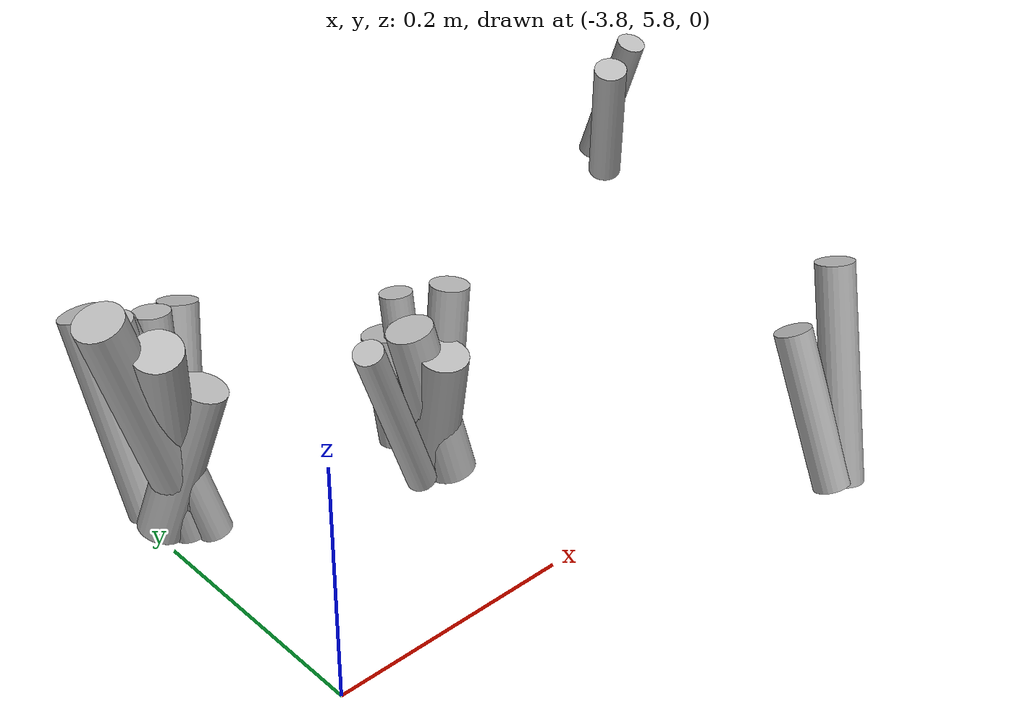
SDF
<sdf version="1.6">
 <world name="default">
  <model name="tussocks">
   <static>true</static>
   <link name="tuft51_1">
    <pose>-3.1367 6.2043 0.0640 0 0.3091 4.8334</pose>
    <visual name="tuft51_1_v">
     <geometry><cylinder><radius>0.0134</radius><length>0.1392</length></cylinder></geometry>
     <material>
      <script>
       <uri>model://bushfire/materials/scripts</uri>
       <uri>model://bushfire/materials/textures</uri>
       <name>Bushfire/Foliage2</name>
      </script>
     </material>
    </visual>
   </link>
   <link name="tuft51_5">
    <pose>-3.1696 6.1765 0.0616 0 0.2742 3.9666</pose>
    <visual name="tuft51_5_v">
     <geometry><cylinder><radius>0.0154</radius><length>0.1340</length></cylinder></geometry>
     <material>
      <script>
       <uri>model://bushfire/materials/scripts</uri>
       <uri>model://bushfire/materials/textures</uri>
       <name>Bushfire/Tussock</name>
      </script>
     </material>
    </visual>
   </link>
   <link name="tuft81_0">
    <pose>-3.5894 5.9491 0.0631 0 0.2297 2.3989</pose>
    <visual name="tuft81_0_v">
     <geometry><cylinder><radius>0.0190</radius><length>0.1371</length></cylinder></geometry>
     <material>
      <script>
       <uri>model://bushfire/materials/scripts</uri>
       <uri>model://bushfire/materials/textures</uri>
       <name>Bushfire/Tussock</name>
      </script>
     </material>
    </visual>
   </link>
   <link name="tuft81_1">
    <pose>-3.5897 5.9664 0.0573 0 0.2334 1.6989</pose>
    <visual name="tuft81_1_v">
     <geometry><cylinder><radius>0.0113</radius><length>0.1246</length></cylinder></geometry>
     <material>
      <script>
       <uri>model://bushfire/materials/scripts</uri>
       <uri>model://bushfire/materials/textures</uri>
       <name>Bushfire/Foliage2</name>
      </script>
     </material>
    </visual>
   </link>
   <link name="tuft81_2">
    <pose>-3.5812 6.0041 0.0428 0 0.2428 1.4667</pose>
    <visual name="tuft81_2_v">
     <geometry><cylinder><radius>0.0197</radius><length>0.0930</length></cylinder></geometry>
     <material>
      <script>
       <uri>model://bushfire/materials/scripts</uri>
       <uri>model://bushfire/materials/textures</uri>
       <name>Bushfire/Foliage2</name>
      </script>
     </material>
    </visual>
   </link>
   <link name="tuft81_3">
    <pose>-3.5593 5.9812 0.0454 0 0.2906 0.8852</pose>
    <visual name="tuft81_3_v">
     <geometry><cylinder><radius>0.0176</radius><length>0.0987</length></cylinder></geometry>
     <material>
      <script>
       <uri>model://bushfire/materials/scripts</uri>
       <uri>model://bushfire/materials/textures</uri>
       <name>Bushfire/Tussock</name>
      </script>
     </material>
    </visual>
   </link>
   <link name="tuft81_4">
    <pose>-3.5760 5.9960 0.0610 0 0.2104 1.3460</pose>
    <visual name="tuft81_4_v">
     <geometry><cylinder><radius>0.0134</radius><length>0.1327</length></cylinder></geometry>
     <material>
      <script>
       <uri>model://bushfire/materials/scripts</uri>
       <uri>model://bushfire/materials/textures</uri>
       <name>Bushfire/Foliage2</name>
      </script>
     </material>
    </visual>
   </link>
   <link name="tuft81_5">
    <pose>-3.5720 5.9547 0.0731 0 0.1889 0.4660</pose>
    <visual name="tuft81_5_v">
     <geometry><cylinder><radius>0.0157</radius><length>0.1589</length></cylinder></geometry>
     <material>
      <script>
       <uri>model://bushfire/materials/scripts</uri>
       <uri>model://bushfire/materials/textures</uri>
       <name>Bushfire/Foliage2</name>
      </script>
     </material>
    </visual>
   </link>
   <link name="tuft81_6">
    <pose>-3.5871 5.9449 0.0538 0 0.1494 4.7284</pose>
    <visual name="tuft81_6_v">
     <geometry><cylinder><radius>0.0198</radius><length>0.1170</length></cylinder></geometry>
     <material>
      <script>
       <uri>model://bushfire/materials/scripts</uri>
       <uri>model://bushfire/materials/textures</uri>
       <name>Bushfire/Foliage2</name>
      </script>
     </material>
    </visual>
   </link>
   <link name="tuft81_7">
    <pose>-3.6354 5.9360 0.0767 0 0.3672 3.3663</pose>
    <visual name="tuft81_7_v">
     <geometry><cylinder><radius>0.0121</radius><length>0.1668</length></cylinder></geometry>
     <material>
      <script>
       <uri>model://bushfire/materials/scripts</uri>
       <uri>model://bushfire/materials/textures</uri>
       <name>Bushfire/Foliage2</name>
      </script>
     </material>
    </visual>
   </link>
   <link name="tuft133_0">
    <pose>-3.3759 5.7471 0.0604 0 0.4189 1.5740</pose>
    <visual name="tuft133_0_v">
     <geometry><cylinder><radius>0.0151</radius><length>0.1313</length></cylinder></geometry>
     <material>
      <script>
       <uri>model://bushfire/materials/scripts</uri>
       <uri>model://bushfire/materials/textures</uri>
       <name>Bushfire/Foliage2</name>
      </script>
     </material>
    </visual>
   </link>
   <link name="tuft133_2">
    <pose>-3.3489 5.7458 0.0821 0 0.3313 1.1086</pose>
    <visual name="tuft133_2_v">
     <geometry><cylinder><radius>0.0157</radius><length>0.1785</length></cylinder></geometry>
     <material>
      <script>
       <uri>model://bushfire/materials/scripts</uri>
       <uri>model://bushfire/materials/textures</uri>
       <name>Bushfire/Tussock</name>
      </script>
     </material>
    </visual>
   </link>
   <link name="tuft189_0">
    <pose>-3.7795 6.0231 0.0901 0 0.2911 2.3283</pose>
    <visual name="tuft189_0_v">
     <geometry><cylinder><radius>0.0135</radius><length>0.1960</length></cylinder></geometry>
     <material>
      <script>
       <uri>model://bushfire/materials/scripts</uri>
       <uri>model://bushfire/materials/textures</uri>
       <name>Bushfire/Tussock</name>
      </script>
     </material>
    </visual>
   </link>
   <link name="tuft189_1">
    <pose>-3.7884 6.0789 0.0778 0 0.3331 1.7317</pose>
    <visual name="tuft189_1_v">
     <geometry><cylinder><radius>0.0191</radius><length>0.1691</length></cylinder></geometry>
     <material>
      <script>
       <uri>model://bushfire/materials/scripts</uri>
       <uri>model://bushfire/materials/textures</uri>
       <name>Bushfire/Foliage2</name>
      </script>
     </material>
    </visual>
   </link>
   <link name="tuft189_2">
    <pose>-3.7796 6.0224 0.0905 0 0.3285 4.1167</pose>
    <visual name="tuft189_2_v">
     <geometry><cylinder><radius>0.0194</radius><length>0.1968</length></cylinder></geometry>
     <material>
      <script>
       <uri>model://bushfire/materials/scripts</uri>
       <uri>model://bushfire/materials/textures</uri>
       <name>Bushfire/Foliage2</name>
      </script>
     </material>
    </visual>
   </link>
   <link name="tuft189_3">
    <pose>-3.7682 6.0456 0.0812 0 0.1891 1.1164</pose>
    <visual name="tuft189_3_v">
     <geometry><cylinder><radius>0.0149</radius><length>0.1766</length></cylinder></geometry>
     <material>
      <script>
       <uri>model://bushfire/materials/scripts</uri>
       <uri>model://bushfire/materials/textures</uri>
       <name>Bushfire/Tussock</name>
      </script>
     </material>
    </visual>
   </link>
   <link name="tuft189_4">
    <pose>-3.7734 6.0188 0.0621 0 0.3145 5.6757</pose>
    <visual name="tuft189_4_v">
     <geometry><cylinder><radius>0.0192</radius><length>0.1349</length></cylinder></geometry>
     <material>
      <script>
       <uri>model://bushfire/materials/scripts</uri>
       <uri>model://bushfire/materials/textures</uri>
       <name>Bushfire/Tussock</name>
      </script>
     </material>
    </visual>
   </link>
   <link name="tuft189_5">
    <pose>-3.7321 6.0775 0.0690 0 0.3309 0.8575</pose>
    <visual name="tuft189_5_v">
     <geometry><cylinder><radius>0.0162</radius><length>0.1501</length></cylinder></geometry>
     <material>
      <script>
       <uri>model://bushfire/materials/scripts</uri>
       <uri>model://bushfire/materials/textures</uri>
       <name>Bushfire/Tussock</name>
      </script>
     </material>
    </visual>
   </link>
   <link name="tuft189_6">
    <pose>-3.7878 6.0296 0.0909 0 0.2025 2.4767</pose>
    <visual name="tuft189_6_v">
     <geometry><cylinder><radius>0.0154</radius><length>0.1977</length></cylinder></geometry>
     <material>
      <script>
       <uri>model://bushfire/materials/scripts</uri>
       <uri>model://bushfire/materials/textures</uri>
       <name>Bushfire/Tussock</name>
      </script>
     </material>
    </visual>
   </link>
   <link name="tuft189_7">
    <pose>-3.7960 6.0207 0.1042 0 0.2968 3.2756</pose>
    <visual name="tuft189_7_v">
     <geometry><cylinder><radius>0.0196</radius><length>0.2265</length></cylinder></geometry>
     <material>
      <script>
       <uri>model://bushfire/materials/scripts</uri>
       <uri>model://bushfire/materials/textures</uri>
       <name>Bushfire/Foliage2</name>
      </script>
     </material>
    </visual>
   </link>
  </model>
 </world>
</sdf>
